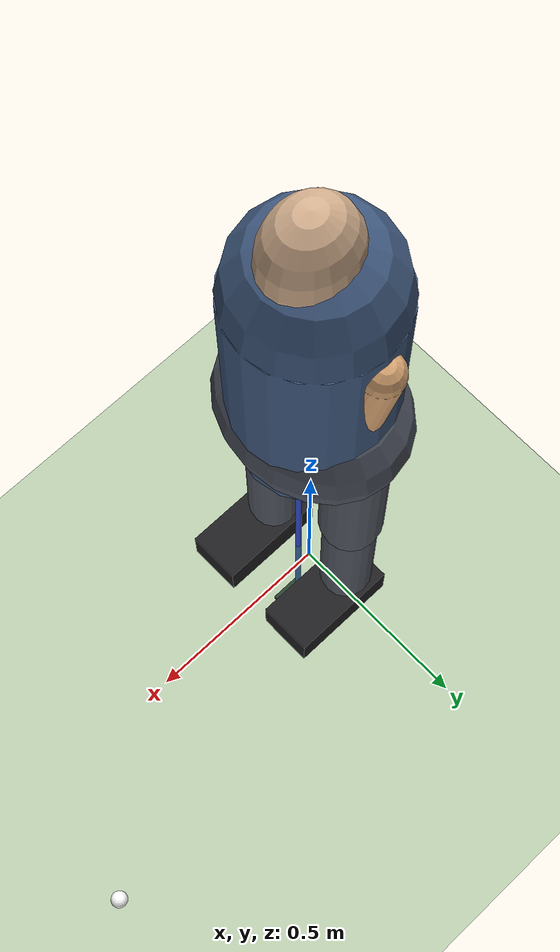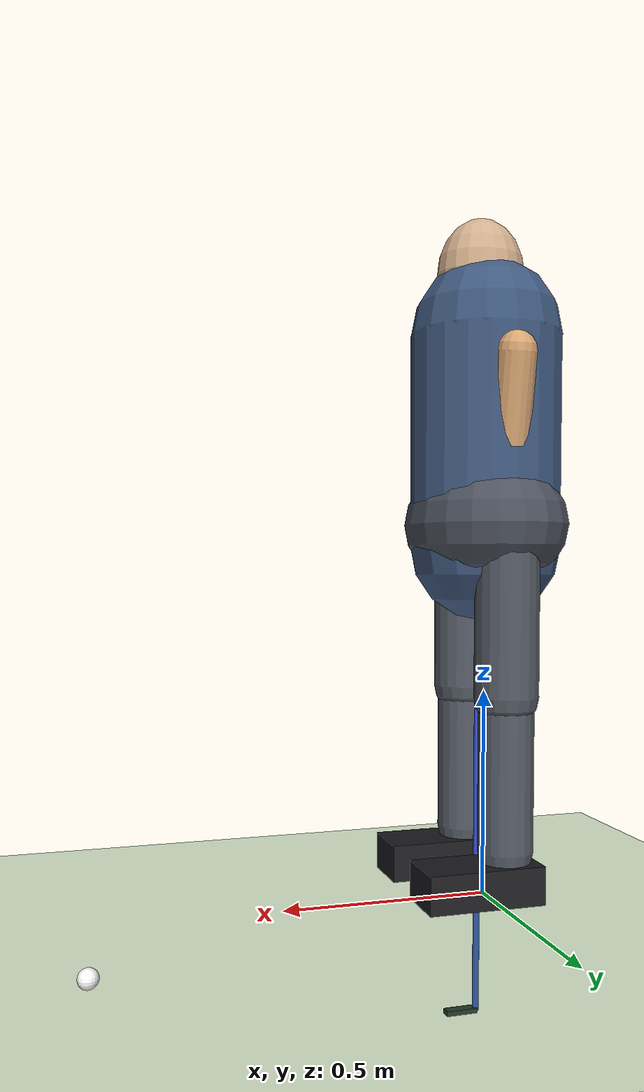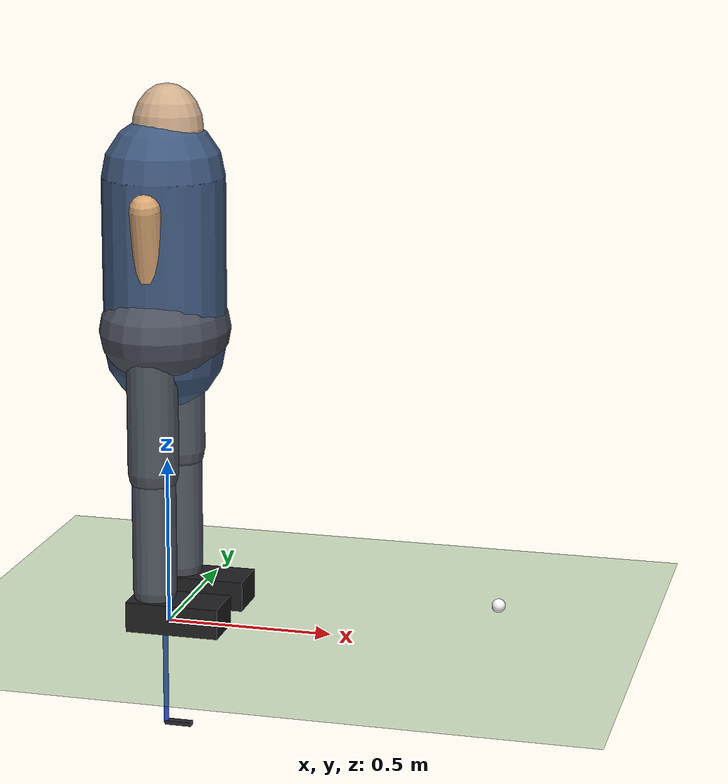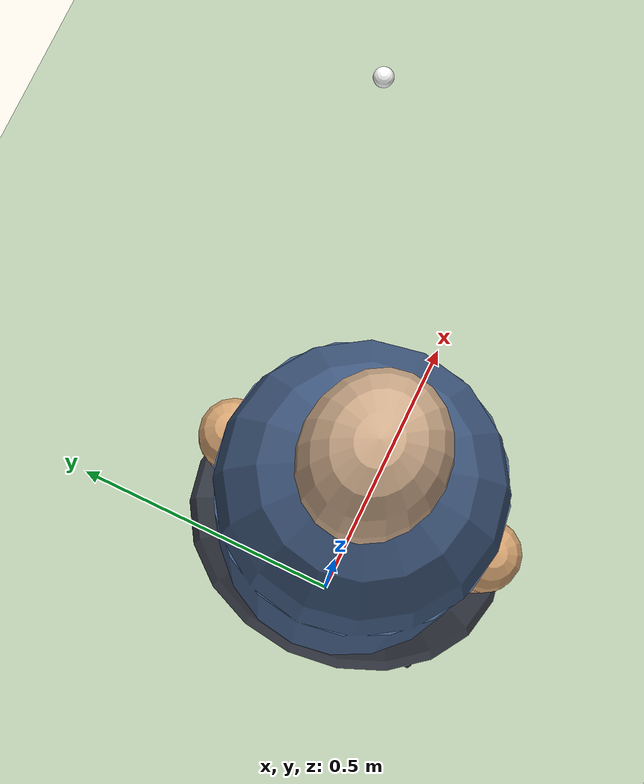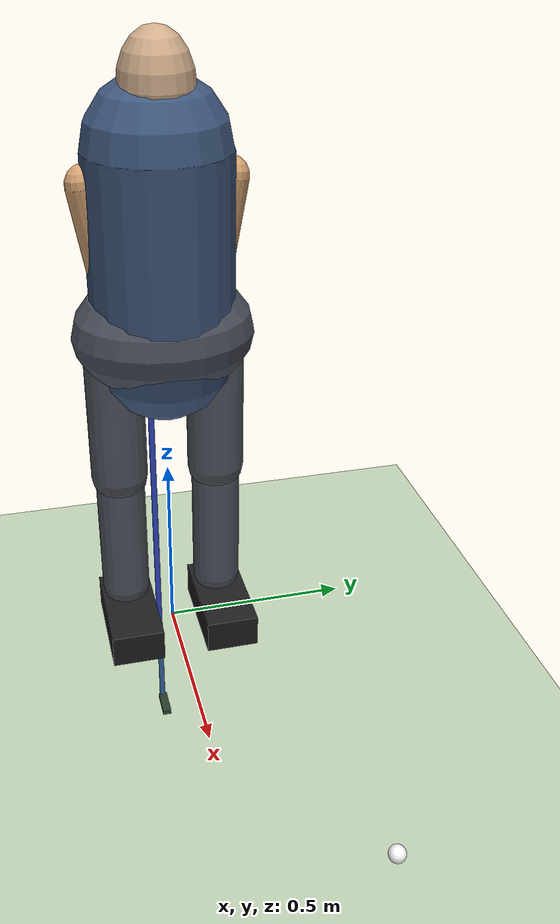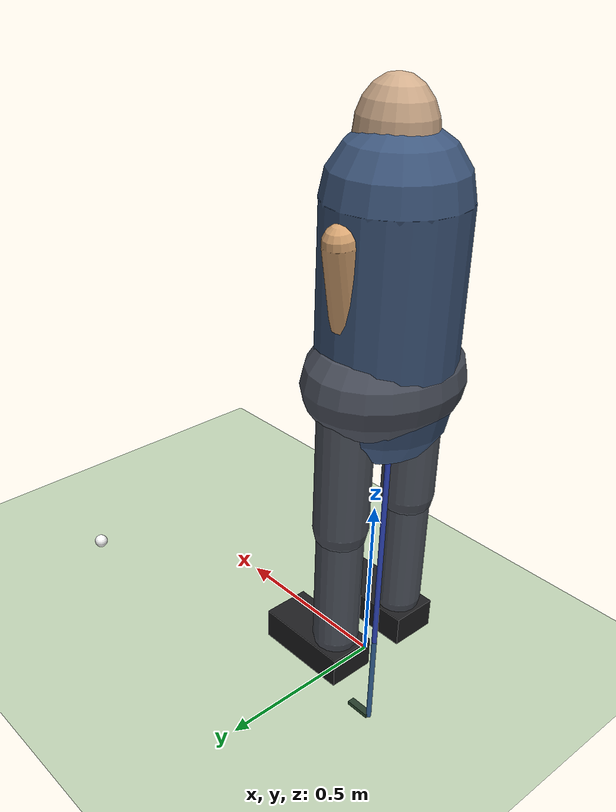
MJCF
<mujoco model="golfer">
  <compiler angle="radian"/>
  <!-- Unidades: m, kg, s e rad. -->
  <option gravity="0 0 -9.81" timestep="0.001" integrator="RK4"/>
  <size nconmax="200" njmax="1000"/>

  <asset>
    <texture type="skybox" builtin="gradient"
             rgb1="0.72 0.87 0.98" rgb2="0.90 0.96 1.0"
             width="512" height="512"/>
  </asset>

  <visual>
    <global azimuth="115" elevation="-12"/>
    <headlight ambient="0.35 0.35 0.35" diffuse="0.8 0.8 0.8"
               specular="0.1 0.1 0.1"/>
  </visual>

  <worldbody>
    <geom name="ground" type="plane" size="5 5 0.1"
          contype="1" conaffinity="6"
          friction="0.25 0.005 0.0001" rgba="0.2 0.5 0.2 1"/>

    <!-- Bacia fixa com rotacao; o tronco articula-se sobre ela. -->
    <body name="pelvis" pos="0 0 1.10">
      <joint name="hip_rotation" type="hinge" axis="0 0 1"
             damping="0.25" range="-0.55 0.55" limited="true"/>
      <geom name="pelvis_geom" type="ellipsoid" pos="0 0 -0.20"
            size="0.19 0.23 0.16" mass="8" rgba="0.30 0.32 0.37 1"/>

      <body name="left_leg" pos="0 0.13 -0.20">
        <geom name="left_upper_leg_geom" type="capsule" fromto="0 0 0 0 0 -0.40"
              size="0.075" mass="5" rgba="0.32 0.34 0.38 1"/>
        <body name="left_lower_leg" pos="0 0 -0.40">
          <joint name="left_knee" type="hinge" axis="0 1 0"
                 damping="0.3" range="-0.15 0.9" limited="true"/>
          <geom name="left_lower_leg_geom" type="capsule"
                fromto="0 0 0 0 0 -0.36"
                size="0.065" mass="3" rgba="0.32 0.34 0.38 1"/>
          <geom name="left_foot_geom" type="box" pos="0.07 0 -0.43"
                contype="0" conaffinity="0"
                size="0.14 0.07 0.045" mass="1.2" rgba="0.12 0.12 0.13 1"/>
        </body>
      </body>
      <body name="right_leg" pos="0 -0.13 -0.20">
        <geom name="right_upper_leg_geom" type="capsule" fromto="0 0 0 0 0 -0.40"
              size="0.075" mass="5" rgba="0.32 0.34 0.38 1"/>
        <body name="right_lower_leg" pos="0 0 -0.40">
          <joint name="right_knee" type="hinge" axis="0 1 0"
                 damping="0.3" range="-0.15 0.9" limited="true"/>
          <geom name="right_lower_leg_geom" type="capsule"
                fromto="0 0 0 0 0 -0.36"
                size="0.065" mass="3" rgba="0.32 0.34 0.38 1"/>
          <geom name="right_foot_geom" type="box" pos="0.07 0 -0.43"
                contype="0" conaffinity="0"
                size="0.14 0.07 0.045" mass="1.2" rgba="0.12 0.12 0.13 1"/>
        </body>
      </body>

      <body name="torso" pos="0 0 0">
        <joint name="hip_flexion" type="hinge" axis="0 1 0"
               damping="0.4" range="-0.35 0.55" limited="true"/>
        <joint name="torso_rotation" type="hinge" axis="0 0 1"
               damping="0.18" range="-1.05 1.05" limited="true"/>
      <geom name="torso_geom" type="capsule" fromto="0 0 -0.25 0 0 0.25"
            size="0.18" mass="25" rgba="0.25 0.35 0.5 1"/>

      <geom name="neck_geom" type="capsule" fromto="0 0 0.22 0 0 0.38"
            size="0.065" mass="0.8" rgba="0.82 0.68 0.55 1"/>
      <geom name="head_geom" type="ellipsoid" pos="0.015 0 0.39"
            size="0.105 0.09 0.13" mass="4.5"
            rgba="0.82 0.68 0.55 1"/>
      <geom name="face_geom" type="capsule" fromto="0.09 -0.018 0.37 0.09 0.018 0.37"
            size="0.018" mass="0.05" rgba="0.78 0.59 0.45 1"/>

      <body name="right_upper_arm" pos="0 -0.17 0.18">
        <joint name="right_shoulder_lift" type="hinge" axis="1 0 0"
               damping="0.08" range="-0.9 0.9" limited="true"/>
        <joint name="right_shoulder" type="hinge" axis="0 1 0"
               damping="0.05" range="-1.8 1.8" limited="true"/>
          <geom name="right_upper_arm_geom" type="capsule"
            fromto="0 0 0 0 0.05 -0.28" size="0.047" mass="2.0"
              rgba="0.85 0.65 0.45 1"/>

        <body name="right_forearm" pos="0 0.05 -0.28">
          <joint name="right_elbow" type="hinge" axis="0 1 0"
                 damping="0.10" range="-2.6 0.45" limited="true"/>
          <geom name="right_forearm_geom" type="capsule"
                fromto="0 0 0 0 0.08 -0.25" size="0.040" mass="1.2"
                rgba="0.85 0.65 0.45 1"/>

          <body name="right_hand" pos="0 0.08 -0.25">
            <geom name="right_hand_geom" type="ellipsoid" size="0.075 0.045 0.045"
                  mass="0.45" rgba="0.85 0.65 0.45 1"/>
            <body name="club_wrist" pos="0 0 0">
              <joint name="right_wrist_hinge" type="hinge" axis="0 1 0"
                     damping="0.08" range="-2.8 2.8" limited="true"/>
              <geom name="club_shaft" type="capsule"
                    fromto="0 0 0 0 0 -1.06" size="0.008" mass="0.30"
                    contype="0" conaffinity="0" rgba="0.2 0.3 0.8 1"/>
              <geom name="club_head" type="box" pos="0.04 0 -1.06"
                    size="0.04 0.012 0.006" mass="0"
                    contype="0" conaffinity="0"
                    rgba="0.15 0.15 0.18 1"/>
              <geom name="club_face_collision" type="box" pos="0.04 0 -1.06"
                    euler="0 1.396263 0.261799"
                    size="0.04 0.012 0.006" mass="0.10"
                    contype="4" conaffinity="2"
                    friction="0.05 0.005 0.0001" rgba="0.15 0.15 0.18 0"/>
            </body>
          </body>
          </body>
        </body>
      </body>

      <!-- Braco esquerdo. -->
      <body name="left_upper_arm" pos="0 0.17 0.18">
        <joint name="left_shoulder_lift" type="hinge" axis="1 0 0"
               damping="0.08" range="-0.9 0.9" limited="true"/>
        <joint name="left_shoulder" type="hinge" axis="0 1 0"
               damping="0.05" range="-1.8 1.8" limited="true"/>
          <geom name="left_upper_arm_geom" type="capsule"
            fromto="0 0 0 0 -0.05 -0.28" size="0.047" mass="2.0"
              rgba="0.85 0.65 0.45 1"/>

        <body name="left_forearm" pos="0 -0.05 -0.28">
          <joint name="left_elbow" type="hinge" axis="0 1 0"
                 damping="0.10" range="-2.6 0.45" limited="true"/>
          <geom name="left_forearm_geom" type="capsule"
                fromto="0 0 0 0 -0.08 -0.25" size="0.040" mass="1.2"
                rgba="0.85 0.65 0.45 1"/>
          <body name="left_hand" pos="0 -0.08 -0.25">
            <geom name="left_hand_geom" type="ellipsoid"
                  size="0.075 0.045 0.045" mass="0.45"
                  rgba="0.85 0.65 0.45 1"/>
          </body>
        </body>
      </body>
    </body>

    <body name="golf_ball" pos="0.945 0.325 0.021">
      <freejoint/>
      <geom name="ball" type="sphere" size="0.021" mass="0.045"
            contype="2" conaffinity="5"
            friction="0.25 0.005 0.0001" rgba="1 1 1 1"/>
    </body>
  </worldbody>

  <contact>
    <exclude body1="right_hand" body2="left_hand"/>
    <exclude body1="golf_ball" body2="left_leg"/>
    <exclude body1="golf_ball" body2="right_leg"/>
    <exclude body1="right_upper_arm" body2="torso"/>
    <exclude body1="left_upper_arm" body2="torso"/>
    <exclude body1="right_upper_arm" body2="pelvis"/>
    <exclude body1="left_upper_arm" body2="pelvis"/>
    <exclude body1="right_upper_arm" body2="left_leg"/>
    <exclude body1="right_upper_arm" body2="right_leg"/>
    <exclude body1="left_upper_arm" body2="left_leg"/>
    <exclude body1="left_upper_arm" body2="right_leg"/>
    <exclude body1="right_upper_arm" body2="left_upper_arm"/>
    <exclude body1="right_forearm" body2="torso"/>
    <exclude body1="left_forearm" body2="torso"/>
    <exclude body1="right_hand" body2="torso"/>
    <exclude body1="golf_ball" body2="left_lower_leg"/>
    <exclude body1="golf_ball" body2="right_lower_leg"/>
    <exclude body1="right_upper_arm" body2="left_lower_leg"/>
    <exclude body1="right_upper_arm" body2="right_lower_leg"/>
    <exclude body1="left_upper_arm" body2="left_lower_leg"/>
    <exclude body1="left_upper_arm" body2="right_lower_leg"/>
    <exclude body1="right_forearm" body2="left_lower_leg"/>
    <exclude body1="right_forearm" body2="right_lower_leg"/>
    <exclude body1="left_forearm" body2="left_lower_leg"/>
    <exclude body1="left_forearm" body2="right_lower_leg"/>
    <exclude body1="right_hand" body2="left_lower_leg"/>
    <exclude body1="right_hand" body2="right_lower_leg"/>
    <exclude body1="right_forearm" body2="left_leg"/>
    <exclude body1="right_forearm" body2="right_leg"/>
    <exclude body1="right_forearm" body2="pelvis"/>
    <exclude body1="left_forearm" body2="left_leg"/>
    <exclude body1="left_forearm" body2="right_leg"/>
    <exclude body1="right_hand" body2="left_leg"/>
    <exclude body1="right_hand" body2="right_leg"/>
    <exclude body1="left_forearm" body2="right_hand"/>
    <exclude body1="left_forearm" body2="pelvis"/>
    <exclude body1="right_hand" body2="pelvis"/>
    <exclude body1="right_forearm" body2="left_forearm"/>
  </contact>

  <actuator>
    <position name="hip_motor" joint="hip_rotation" kp="180" kv="24"
              ctrlrange="-0.55 0.55"/>
    <position name="hip_flexion_motor" joint="hip_flexion" kp="120" kv="20"
              ctrlrange="-0.35 0.55"/>
    <position name="torso_motor" joint="torso_rotation" kp="100"
              ctrlrange="-1.05 1.05"/>
    <position name="right_shoulder_lift_motor" joint="right_shoulder_lift"
              kp="120" kv="20" ctrlrange="-0.9 0.9"/>
    <position name="right_shoulder_motor" joint="right_shoulder" kp="160"
              kv="24" ctrlrange="-1.8 1.8"/>
    <position name="right_elbow_motor" joint="right_elbow" kp="150" kv="22"
              ctrlrange="-2.6 0.8"/>
    <position name="right_wrist_hinge_motor" joint="right_wrist_hinge"
              kp="100" kv="16" ctrlrange="-2.8 2.8"/>
    <position name="left_shoulder_lift_motor" joint="left_shoulder_lift"
              kp="120" kv="20" ctrlrange="-0.9 0.9"/>
    <position name="left_shoulder_motor" joint="left_shoulder" kp="180" kv="26"
              ctrlrange="-1.8 1.8"/>
    <position name="left_elbow_motor" joint="left_elbow" kp="180" kv="26"
              ctrlrange="-2.6 0.8"/>
    <position name="left_knee_motor" joint="left_knee" kp="100" kv="18"
              ctrlrange="-0.15 0.9"/>
    <position name="right_knee_motor" joint="right_knee" kp="100" kv="18"
              ctrlrange="-0.15 0.9"/>
  </actuator>
</mujoco>
